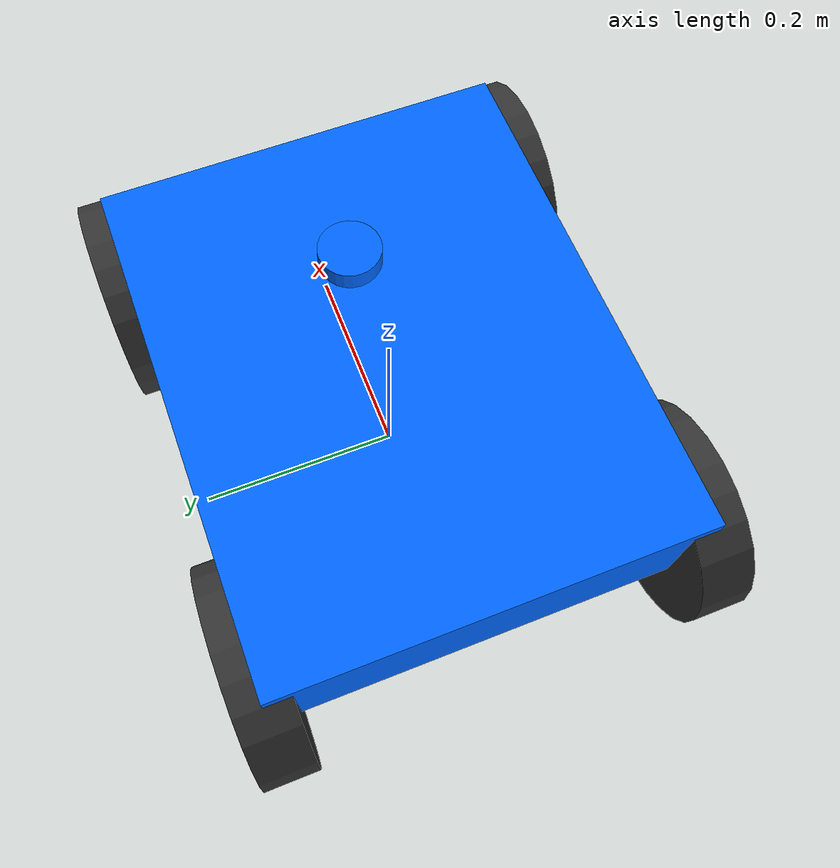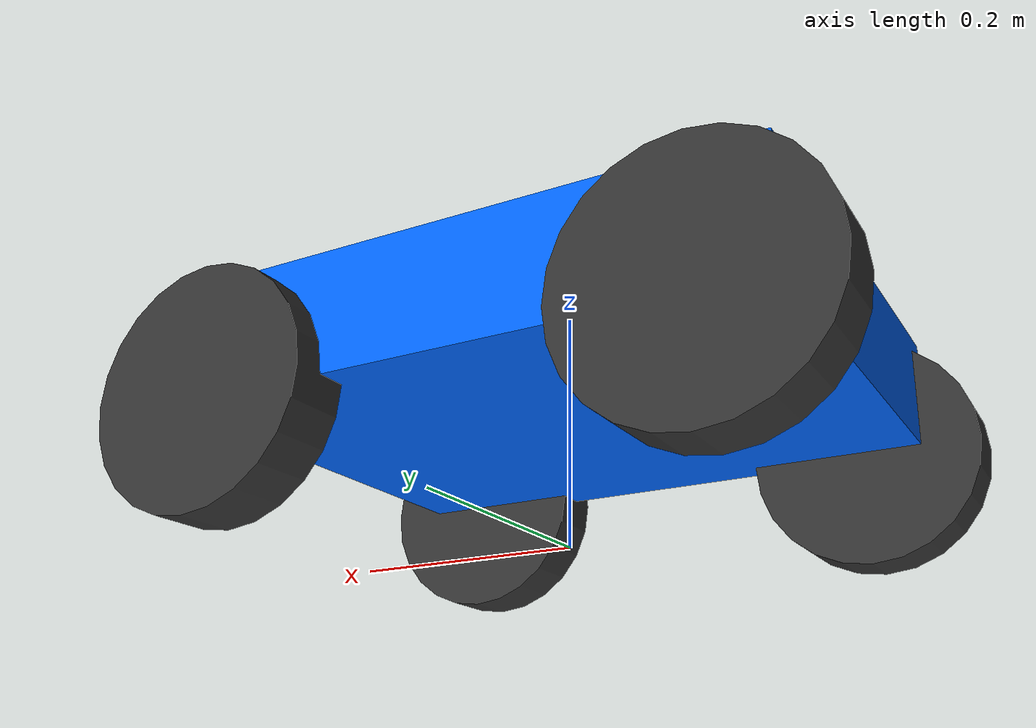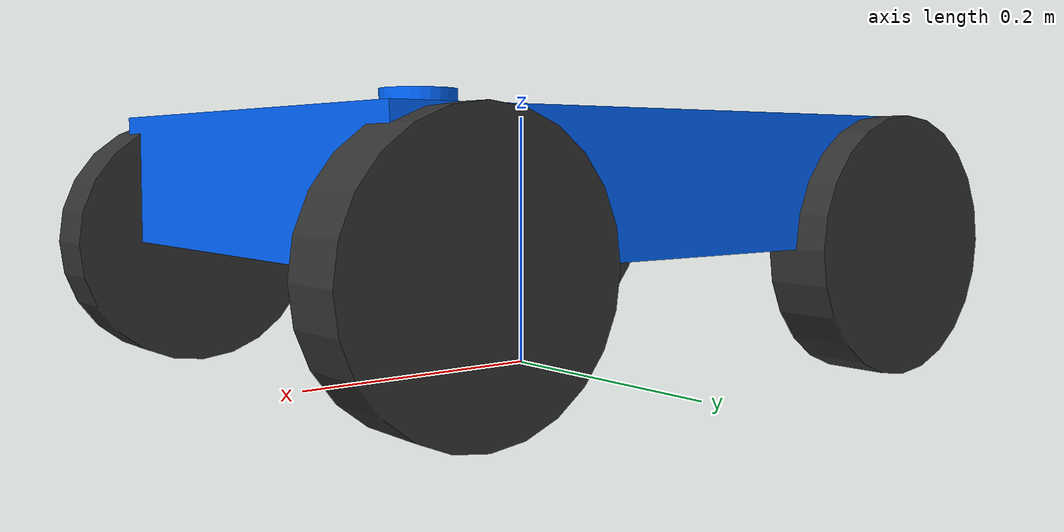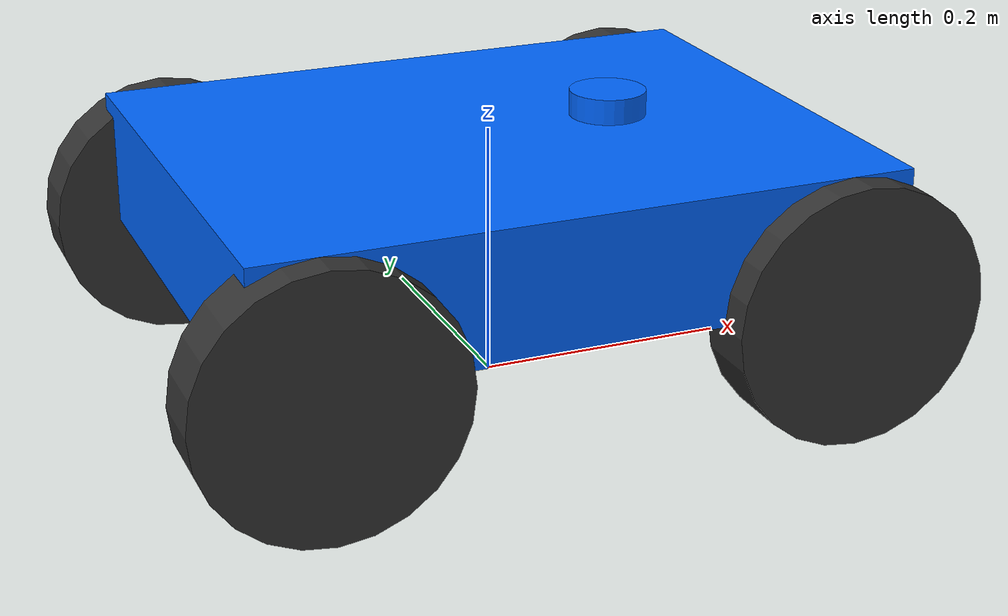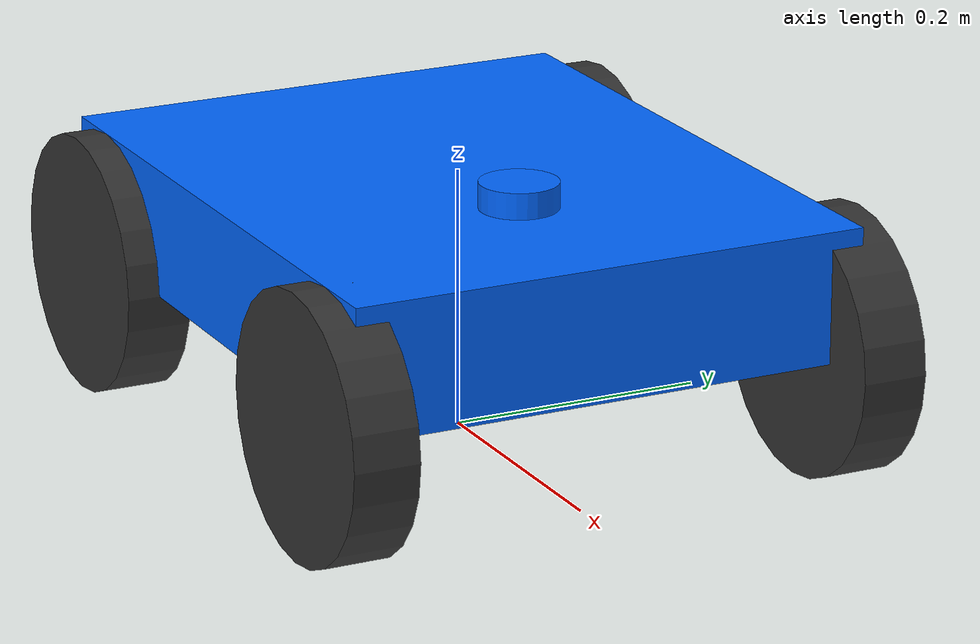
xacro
<?xml version="1.0"?>
<robot
    name="newton_bot"
    xmlns:xacro="http://www.ros.org/wiki/xacro">
    <!-- Global Properties -->
    <xacro:property name="wheel_radius" value="0.10"/>
    <xacro:property name="wheel_width" value="0.05"/>
    <xacro:property name="robot_length" value="0.50"/>
    <xacro:property name="robot_width" value="0.40"/>

    <!-- Include Robot Parts -->
    <xacro:include filename="base.xacro"/>
    <xacro:include filename="wheels.xacro"/>
    <xacro:include filename="sensors.xacro"/>
    <xacro:include filename="materials.xacro"/>
    <xacro:include filename="gazebo.xacro"/>

    <!-- Robot Components -->

    <xacro:base/>
    <xacro:wheel
        name="front_left_wheel"
        parent="base_link"
        x="0.20"
        y="0.20"/>
    <xacro:wheel
        name="front_right_wheel"
        parent="base_link"
        x="0.20"
        y="-0.20"/>
    <xacro:wheel
        name="rear_left_wheel"
        parent="base_link"
        x="-0.20"
        y="0.20"/>
    <xacro:wheel
        name="rear_right_wheel"
        parent="base_link"
        x="-0.20"
        y="-0.20"/>

    <!-- Camera -->
    <xacro:camera/>
    <xacro:lidar/>
</robot>

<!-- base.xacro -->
<robot xmlns:xacro="http://www.ros.org/wiki/xacro">

    <xacro:macro name="base">

        <link name="base_link">

            <!-- Visual Representation -->
            <visual>
                <origin xyz="0 0 0.15"/>
                <geometry>
                    <box size="${robot_length} ${robot_width} 0.10"/>
                </geometry>
                <material name="blue"/>
            </visual>

            <!-- Collision Model -->
            <collision>
                <origin xyz="0 0 0.05"/>
                <geometry>
                    <box size="${robot_length} ${robot_width} 0.10"/>
                </geometry>
            </collision>

            <!-- Physical Properties -->
            <inertial>

                <origin xyz="0 0 0.05"/>

                <mass value="5.0"/>

                <inertia
                    ixx="0.10"
                    ixy="0.0"
                    ixz="0.0"
                    iyy="0.10"
                    iyz="0.0"
                    izz="0.10"/>

            </inertial>

        </link>

    </xacro:macro>

</robot>

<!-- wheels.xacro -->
<robot xmlns:xacro="http://www.ros.org/wiki/xacro">
    <xacro:macro name="wheel" params="name parent x y">
        <!-- Wheel Link -->
        <link name="${name}">
            <visual>
                <origin
                    xyz="0 0 0"
                    rpy="1.5708 0 0"/>
                <geometry>
                    <cylinder
                        radius="${wheel_radius}"
                        length="${wheel_width}"/>
                </geometry>
                <material name="black"/>
            </visual>
            <collision>
                <origin
                    xyz="0 0 0"
                    rpy="1.5708 0 0"/>
                <geometry>
                    <cylinder
                        radius="${wheel_radius}"
                        length="${wheel_width}"/>
                </geometry>
            </collision>
            <inertial>
                <mass value="1.0"/>
                <origin xyz="0 0 0"/>
                <inertia
                    ixx="0.01"
                    ixy="0.0"
                    ixz="0.0"
                    iyy="0.01"
                    iyz="0.0"
                    izz="0.01"/>
            </inertial>
        </link>
        <!-- Joint -->
        <joint
            name="${name}_joint"
            type="continuous">
            <parent link="${parent}"/>

            <child link="${name}"/>
            <axis xyz="0 1 0"/>
            <origin
                xyz="${x} ${y} ${wheel_radius}"
                rpy="0 0 0"/>
        </joint>
    </xacro:macro>

</robot>

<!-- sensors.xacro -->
<robot xmlns:xacro="http://www.ros.org/wiki/xacro">
    <xacro:macro name="camera">
        <link name="camera_link">
            <visual>
                <geometry>
                    <box size="0.05 0.05 0.05"/>
                </geometry>
                <material name="red"/>
            </visual>

            <collision>
                <geometry>
                    <box size="0.05 0.05 0.05"/>
                </geometry>
            </collision>

            <inertial>
                <mass value="0.05"/>
                <inertia
                    ixx="0.00002"
                    ixy="0.0"
                    ixz="0.0"
                    iyy="0.00002"
                    iyz="0.0"
                    izz="0.00002"/>
            </inertial>
        </link>

        <joint name="camera_joint" type="fixed">
            <parent link="base_link"/>
            <child link="camera_link"/>
            <origin xyz="0.20 0 0.15" rpy="0 0 0"/>
        </joint>
    </xacro:macro>

    <xacro:macro name="lidar">
        <link name="lidar_link">
            <visual>
                <geometry>
                    <cylinder length="0.04" radius="0.03"/>
                </geometry>
                <material name="blue"/>
            </visual>

            <collision>
                <geometry>
                    <cylinder length="0.04" radius="0.03"/>
                </geometry>
            </collision>

            <inertial>
                <mass value="0.05"/>
                <inertia
                    ixx="0.00002"
                    ixy="0.0"
                    ixz="0.0"
                    iyy="0.00002"
                    iyz="0.0"
                    izz="0.00002"/>
            </inertial>
        </link>

        <joint name="lidar_joint" type="fixed">
            <parent link="base_link"/>
            <child link="lidar_link"/>
            <origin xyz="0.1 0 0.2" rpy="0 0 0"/>
        </joint>
    </xacro:macro>
</robot>

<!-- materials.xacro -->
<robot xmlns:xacro="http://www.ros.org/wiki/xacro">

    <material name="black">
        <color rgba="0.2 0.2 0.2 1"/>
    </material>

    <material name="blue">
        <color rgba="0.0 0.4 1.0 1"/>
    </material>

    <material name="red">
        <color rgba="1 0 0 1"/>
    </material>

    <material name="white">
        <color rgba="1 1 1 1"/>
    </material>

</robot>
